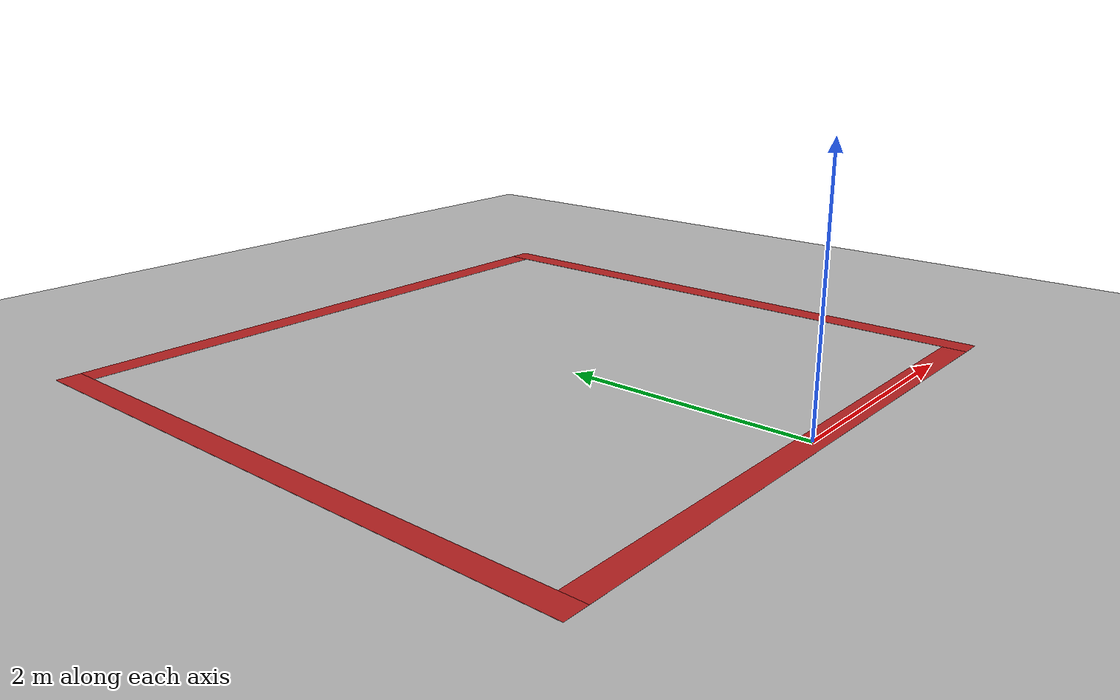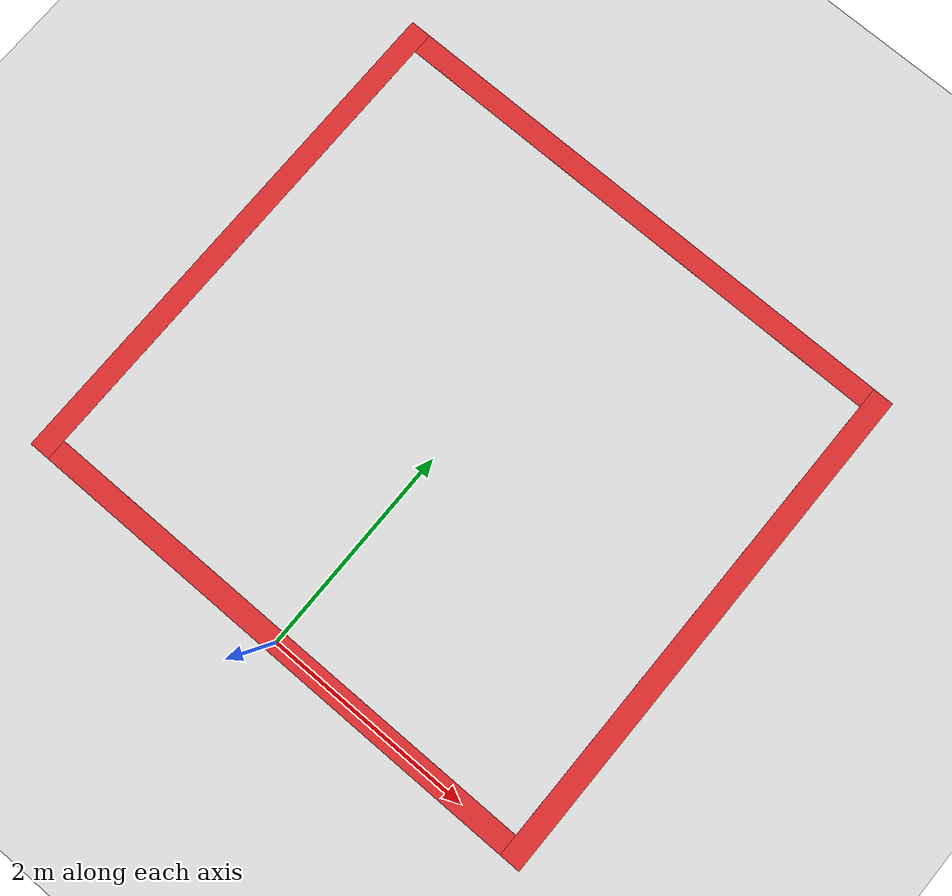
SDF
<sdf version='1.10'>
  <world name='empty'>
    <physics name='1ms' type='ignored'>
      <max_step_size>0.001</max_step_size>
      <real_time_factor>1</real_time_factor>
      <real_time_update_rate>1000</real_time_update_rate>
    </physics>
    <plugin name='gz::sim::systems::Physics' filename='gz-sim-physics-system'/>
    <plugin name='gz::sim::systems::UserCommands' filename='gz-sim-user-commands-system'/>
    <plugin name='gz::sim::systems::SceneBroadcaster' filename='gz-sim-scene-broadcaster-system'/>
    <plugin name='gz::sim::systems::Contact' filename='gz-sim-contact-system'/>
    <gravity>0 0 -9.8000000000000007</gravity>
    <magnetic_field>5.5644999999999998e-06 2.2875799999999999e-05 -4.2388400000000002e-05</magnetic_field>
    <atmosphere type='adiabatic'/>
    <scene>
      <ambient>0.400000006 0.400000006 0.400000006 1</ambient>
      <background>0.699999988 0.699999988 0.699999988 1</background>
      <shadows>true</shadows>
    </scene>
    <model name='ground_plane'>
      <static>true</static>
      <link name='link'>
        <collision name='collision'>
          <geometry>
            <plane>
              <normal>0 0 1</normal>
              <size>100 100</size>
            </plane>
          </geometry>
          <surface>
            <friction>
              <ode/>
            </friction>
            <bounce/>
            <contact/>
          </surface>
        </collision>
        <visual name='visual'>
          <geometry>
            <plane>
              <normal>0 0 1</normal>
              <size>100 100</size>
            </plane>
          </geometry>
          <material>
            <ambient>0.800000012 0.800000012 0.800000012 1</ambient>
            <diffuse>0.800000012 0.800000012 0.800000012 1</diffuse>
            <specular>0.800000012 0.800000012 0.800000012 1</specular>
          </material>
        </visual>
        <pose>0 0 0 0 0 0</pose>
        <inertial>
          <pose>0 0 0 0 0 0</pose>
          <mass>1</mass>
          <inertia>
            <ixx>1</ixx>
            <ixy>0</ixy>
            <ixz>0</ixz>
            <iyy>1</iyy>
            <iyz>0</iyz>
            <izz>1</izz>
          </inertia>
        </inertial>
        <enable_wind>false</enable_wind>
      </link>
      <pose>0 0 0 0 0 0</pose>
      <self_collide>false</self_collide>
    </model>
    <model name='track'>
        <link name='line1'>
            <inertial>
                <pose>1.0842021724855039e-16 2.3999999999999999 0 0 0 0</pose>
                <mass>0.0040000000000000001</mass>
                <inertia>
                    <ixx>0.01155999999999999</ixx>
                    <ixy>1.040834085586084e-18</ixy>
                    <ixz>0</ixz>
                    <iyy>0.013559999999999999</iyy>
                    <iyz>0</iyz>
                    <izz>0.025080000000000002</izz>
                </inertia>
            </inertial>
            <collision name='line1_collision'>
                <pose>0 0 0 0 0 0</pose>
                <geometry>
                    <box>
                        <size>5 0.20000000000000001 0.001</size>
                    </box>
                </geometry>
            </collision>
            <collision name='line1_fixed_joint_lump__line2_collision_1'>
                <pose>2.6000000000000001 2.3999999999999999 0 0 0 1.5707</pose>
                <geometry>
                    <box>
                        <size>5 0.20000000000000001 0.001</size>
                    </box>
                </geometry>
            </collision>
            <collision name='line1_fixed_joint_lump__line3_collision_2'>
                <pose>0 4.7999999999999998 0 0 0 0</pose>
                <geometry>
                    <box>
                        <size>5 0.20000000000000001 0.001</size>
                    </box>
                </geometry>
            </collision>
            <collision name='line1_fixed_joint_lump__line4_collision_3'>
                <pose>-2.6000000000000001 2.3999999999999999 0 0 0 1.5707</pose>
                    <geometry>
                        <box>
                            <size>5 0.20000000000000001 0.001</size>
                        </box>
                    </geometry>
            </collision>
        <visual name='line1_visual'>
        <pose>0 0 0 0 0 0</pose>
        <geometry>
          <box>
            <size>5 0.20000000000000001 0.001</size>
          </box>
        </geometry>
        <material>
          <script>
            <uri>file://media/materials/scripts/gazebo.material</uri>
            <name>Gazebo/Red</name>
          </script>
        </material>
      </visual>
      <visual name='line1_fixed_joint_lump__line2_visual_1'>
        <pose>2.6000000000000001 2.3999999999999999 0 0 0 1.5707</pose>
        <geometry>
          <box>
            <size>5 0.20000000000000001 0.001</size>
          </box>
        </geometry>
        <material>
          <script>
            <uri>file://media/materials/scripts/gazebo.material</uri>
            <name>Gazebo/Red</name>
          </script>
        </material>
      </visual>
      <visual name='line1_fixed_joint_lump__line3_visual_2'>
        <pose>0 4.7999999999999998 0 0 0 0</pose>
        <geometry>
          <box>
            <size>5 0.20000000000000001 0.001</size>
          </box>
        </geometry>
        <material>
          <script>
            <uri>file://media/materials/scripts/gazebo.material</uri>
            <name>Gazebo/Red</name>
          </script>
        </material>
      </visual>
      <visual name='line1_fixed_joint_lump__line4_visual_3'>
        <pose>-2.6000000000000001 2.3999999999999999 0 0 0 1.5707</pose>
        <geometry>
          <box>
            <size>5 0.20000000000000001 0.001</size>
          </box>
        </geometry>
        <material>
          <script>
            <uri>file://media/materials/scripts/gazebo.material</uri>
            <name>Gazebo/Red</name>
          </script>
        </material>
      </visual>
    </link>
    <frame name='joint1' attached_to='line1'>
      <pose>2.6000000000000001 2.3999999999999999 0 0 0 0</pose>
    </frame>
    <frame name='line2' attached_to='joint1'>
      <pose>0 0 0 0 0 0</pose>
    </frame>
    <frame name='joint2' attached_to='line1'>
      <pose>0 4.7999999999999998 0 0 0 0</pose>
    </frame>
    <frame name='line3' attached_to='joint2'>
      <pose>0 0 0 0 0 0</pose>
    </frame>
    <frame name='joint3' attached_to='line1'>
      <pose>-2.6000000000000001 2.3999999999999999 0 0 0 0</pose>
    </frame>
    <frame name='line4' attached_to='joint3'>
      <pose>0 0 0 0 0 0</pose>
    </frame>
    <joint name='fixed_joint' type='fixed'>
        <parent>world</parent>
        <child>line1</child>
        <pose>0 0 0 0 0 0</pose>
    </joint>
  </model>
    <light name='sun' type='directional'>
      <pose>0 0 10 0 0 0</pose>
      <cast_shadows>true</cast_shadows>
      <intensity>1</intensity>
      <direction>-0.5 0.10000000000000001 -0.90000000000000002</direction>
      <diffuse>0.800000012 0.800000012 0.800000012 1</diffuse>
      <specular>0.200000003 0.200000003 0.200000003 1</specular>
      <attenuation>
        <range>1000</range>
        <linear>0.0099999997764825821</linear>
        <constant>0.89999997615814209</constant>
        <quadratic>0.0010000000474974513</quadratic>
      </attenuation>
      <spot>
        <inner_angle>0</inner_angle>
        <outer_angle>0</outer_angle>
        <falloff>0</falloff>
      </spot>
    </light>
  </world>
</sdf>
